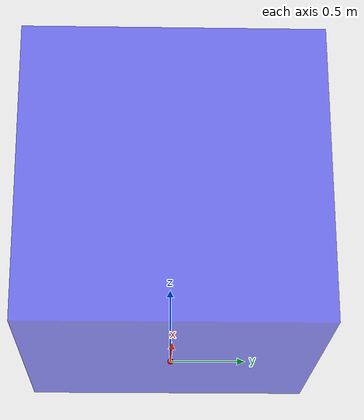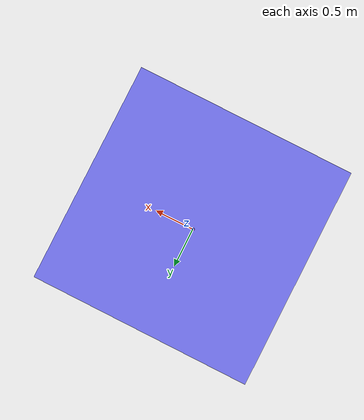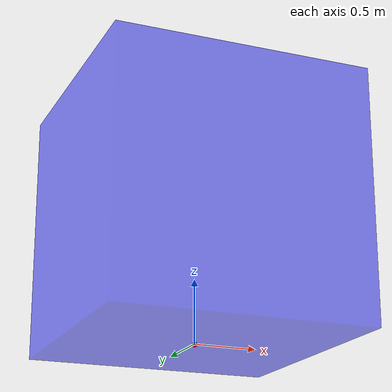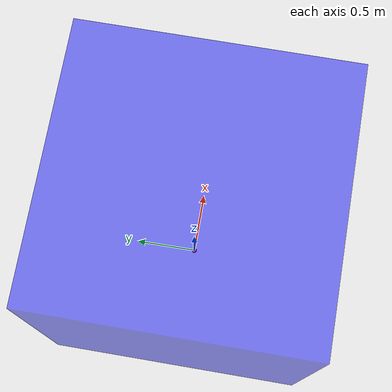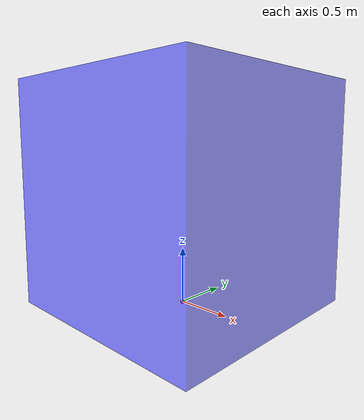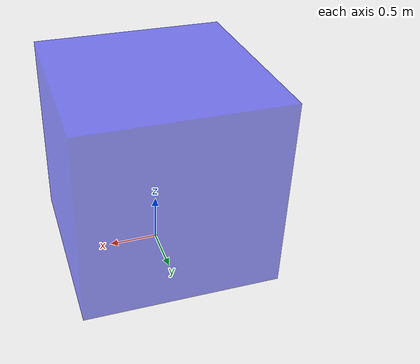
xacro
<?xml version="1.0"?>
<!-- Save as ~/git/CDPRX/cdprx/urdf/test_robot.urdf.xacro -->
<robot name="cdpr_test" xmlns:xacro="http://www.ros.org/wiki/xacro">
    <!-- Include properties -->
    <xacro:property name="frame_height" value="2.0"/>
    <xacro:property name="frame_width" value="2.0"/>
    <xacro:property name="frame_length" value="2.0"/>

    <!-- World link -->
    <link name="world">
        <visual>
            <geometry>
                <sphere radius="0.02"/>
            </geometry>
            <material name="red">
                <color rgba="1 0 0 1"/>
            </material>
        </visual>
    </link>

    <!-- Simple test frame -->
    <link name="test_frame">
        <visual>
            <geometry>
                <box size="${frame_length} ${frame_width} ${frame_height}"/>
            </geometry>
            <material name="blue">
                <color rgba="0 0 1 0.5"/>
            </material>
        </visual>
    </link>

    <joint name="world_to_frame" type="fixed">
        <parent link="world"/>
        <child link="test_frame"/>
        <origin xyz="0 0 ${frame_height/2}" rpy="0 0 0"/>
    </joint>
</robot>
